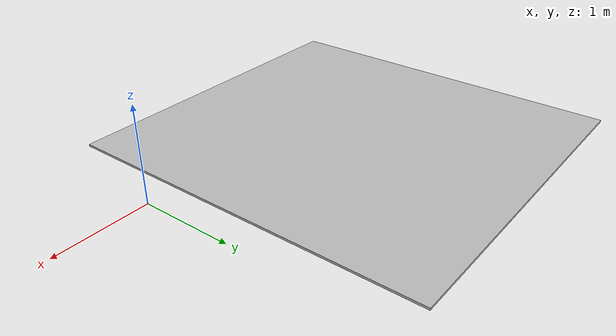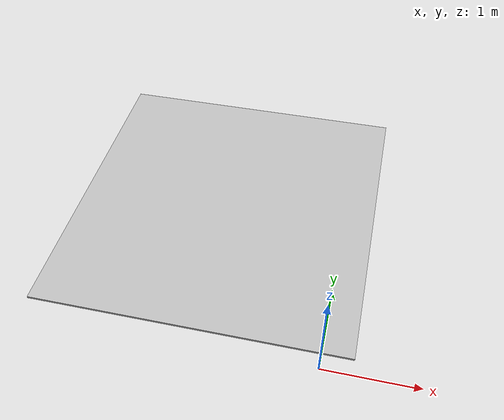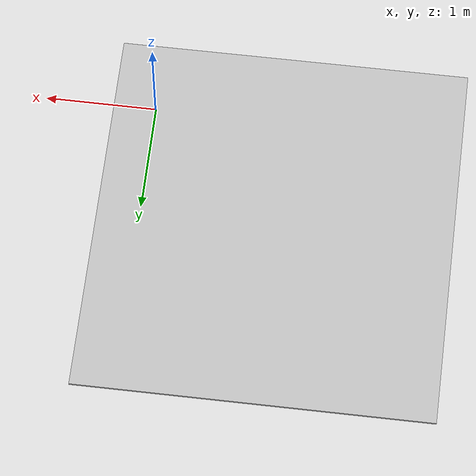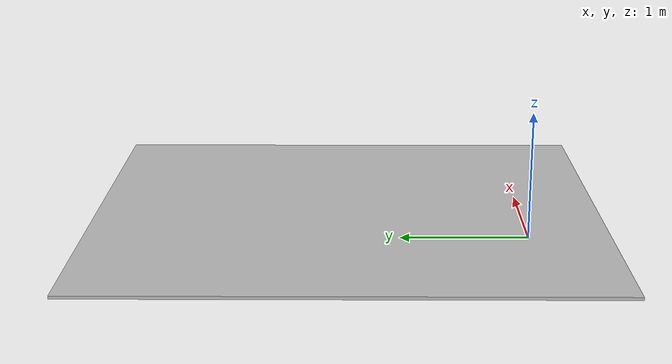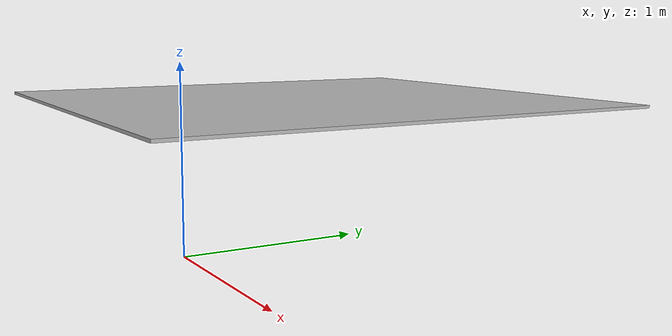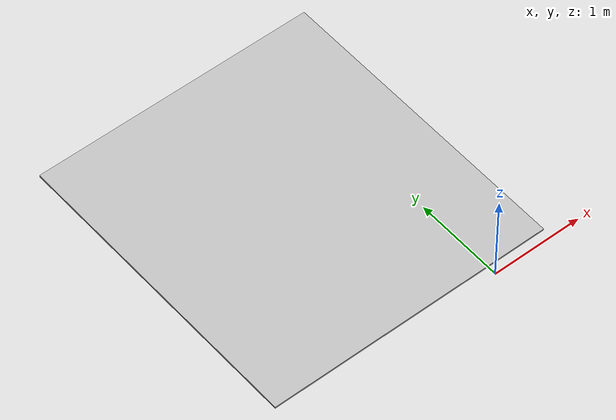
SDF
<?xml version='1.0'?>
<sdf version='1.7'>
  <model name='line_map'>
    <link name='link'>
      <inertial>
        <mass>0.203317</mass>
        <inertia>
          <ixx>0.189651</ixx>
          <ixy>0</ixy>
          <ixz>0</ixz>
          <iyy>0.160298</iyy>
          <iyz>0</iyz>
          <izz>0.349936</izz>
        </inertia>
        <pose>0 0 0 0 -0 0</pose>
      </inertial>
      <self_collide>0</self_collide>
      <enable_wind>0</enable_wind>
      <kinematic>0</kinematic>
      <pose>-1.23617 1.40328 0.654711 0 -0 0</pose>
      <visual name='visual'>
        <geometry>
          <box>
            <size>3.0758 3.3456 0.019411</size>
          </box>
        </geometry>
        <material>
          <script>
            <uri>file:///home/anton/cart_ws/src/cart_bot/worlds/line_map</uri>
            <name>LineMaterial</name>
          </script>
        </material>
      </visual>
      <collision name='collision'>
        <laser_retro>0</laser_retro>
        <max_contacts>10</max_contacts>
        <pose>0 0 0 0 -0 0</pose>
        <geometry>
          <box>
            <size>3.0758 3.3456 0.019411</size>
          </box>
        </geometry>
        <surface>
          <friction>
            <ode>
              <mu>1</mu>
              <mu2>1</mu2>
              <fdir1>0 0 0</fdir1>
              <slip1>0</slip1>
              <slip2>0</slip2>
            </ode>
            <torsional>
              <coefficient>1</coefficient>
              <patch_radius>0</patch_radius>
              <surface_radius>0</surface_radius>
              <use_patch_radius>1</use_patch_radius>
              <ode>
                <slip>0</slip>
              </ode>
            </torsional>
          </friction>
          <bounce>
            <restitution_coefficient>0</restitution_coefficient>
            <threshold>1e+06</threshold>
          </bounce>
          <contact>
            <collide_without_contact>0</collide_without_contact>
            <collide_without_contact_bitmask>1</collide_without_contact_bitmask>
            <collide_bitmask>1</collide_bitmask>
            <ode>
              <soft_cfm>0</soft_cfm>
              <soft_erp>0.2</soft_erp>
              <kp>1e+13</kp>
              <kd>1</kd>
              <max_vel>0.01</max_vel>
              <min_depth>0</min_depth>
            </ode>
            <bullet>
              <split_impulse>1</split_impulse>
              <split_impulse_penetration_threshold>-0.01</split_impulse_penetration_threshold>
              <soft_cfm>0</soft_cfm>
              <soft_erp>0.2</soft_erp>
              <kp>1e+13</kp>
              <kd>1</kd>
            </bullet>
          </contact>
        </surface>
      </collision>
    </link>
    <static>0</static>
    <allow_auto_disable>1</allow_auto_disable>
  </model>
</sdf>
